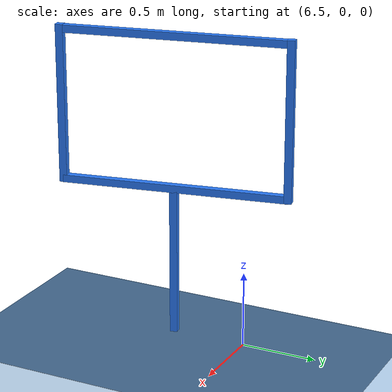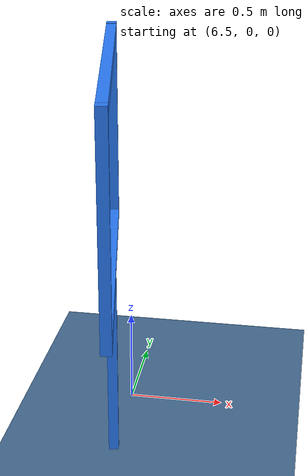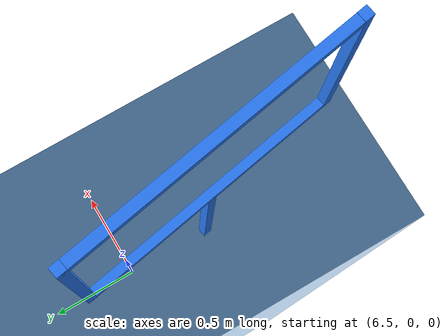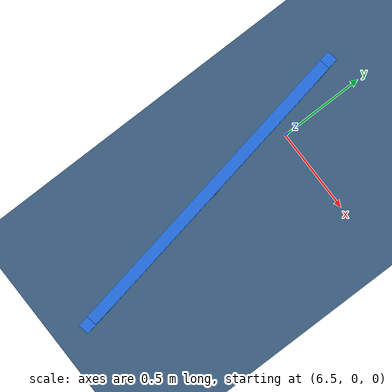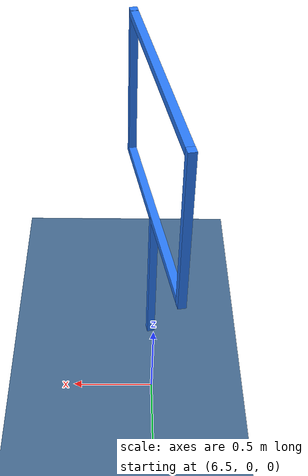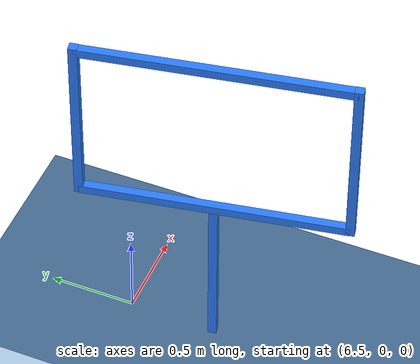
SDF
<sdf version="1.6">
 <world name="water_world">
  <include><pose>6.5 -0.5 0 0 0.0 1.75</pose><uri>model://Big gate</uri></include>
  <plugin filename="libgz-sim-physics-system.so" name="gz::sim::systems::Physics"/>
  <plugin filename="libgz-sim-user-commands-system.so" name="gz::sim::systems::UserCommands"/>
  <plugin filename="libgz-sim-scene-broadcaster-system.so" name="gz::sim::systems::SceneBroadcaster"/>
  <plugin filename="gz-sim-sensors-system" name="gz::sim::systems::Sensors">
   <render_engine>ogre2</render_engine>
  </plugin>
  <plugin filename="gz-sim-imu-system" name="gz::sim::systems::Imu"/>
  <plugin filename="libgz-sim-buoyancy-system.so" name="gz::sim::systems::Buoyancy">
   <uniform_fluid_density>1000</uniform_fluid_density>
   <buoyancy>
    <link_name>mesh::link</link_name>
    <geometry><box><size>0.543 0.510 0.408</size></box></geometry>
   </buoyancy>
  </plugin>
  <physics name="1ms" type="ode">
   <max_step_size>0.001</max_step_size>
   <real_time_factor>1.0</real_time_factor>
   <ode>
    <solver><type>quick</type><iters>50</iters><sor>1.3</sor></solver>
    <constraints>
     <cfm>0.0</cfm>
     <erp>0.2</erp>
     <contact_max_correcting_vel>100.0</contact_max_correcting_vel>
     <contact_surface_layer>0.001</contact_surface_layer>
    </constraints>
   </ode>
  </physics>
  <model name="water_volume">
   <static>true</static>
   <pose>0 0 -5 0 0 0</pose>
   <link name="water_link">
    <collision name="water_collision">
     <geometry><box><size>100 100 10</size></box></geometry>
     <surface>
      <contact>
       <collide_without_contact>1</collide_without_contact>
       <collide_without_contact_bitmask>2</collide_without_contact_bitmask>
      </contact>
     </surface>
    </collision>
    <visual name="water_visual">
     <geometry><box><size>100 100 10</size></box></geometry>
     <material>
      <ambient>0.0 0.5 1.0 0.3</ambient>
      <diffuse>0.0 0.5 1.0 0.3</diffuse>
      <specular>0.1 0.1 0.1 1</specular>
      <emissive>0.0 0.0 0.0 1</emissive>
     </material>
     <transparency>0.7</transparency>
    </visual>
   </link>
  </model>
  <light type="directional" name="sun">
   <pose>0 0 10 0 0 0</pose>
   <diffuse>0.8 0.8 0.8 1</diffuse>
   <specular>0.2 0.2 0.2 1</specular>
   <attenuation>
    <range>1000</range>
    <constant>0.9</constant>
    <linear>0.01</linear>
    <quadratic>0.001</quadratic>
   </attenuation>
   <direction>-0.5 0.1 -0.9</direction>
  </light>
  <model name="ground_plane">
   <static>true</static>
   <link name="link">
    <collision name="collision">
     <geometry><plane><normal>0 0 1</normal><size>100 100</size></plane></geometry>
    </collision>
    <visual name="visual">
     <geometry><plane><normal>0 0 1</normal><size>100 100</size></plane></geometry>
     <material>
      <ambient>0.4 0.4 0.4 1</ambient>
      <diffuse>0.4 0.4 0.4 1</diffuse>
      <specular>0.8 0.8 0.8 1</specular>
     </material>
    </visual>
   </link>
  </model>
 </world>
</sdf>

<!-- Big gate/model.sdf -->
<sdf version="1.6">
  <model name="small_gate">
    <!-- Rod -->
    <link name="rod">
      <pose>0 0 0.5 0 0 0</pose>
      <inertial>
        <mass>1</mass>
        <inertia>
          <ixx>0.166667</ixx>
          <ixy>0</ixy>
          <ixz>0</ixz>
          <iyy>0.166667</iyy>
          <iyz>0</iyz>
          <izz>0.166667</izz>
        </inertia>
        <pose frame="">0 0 0 0 0 0</pose>
      </inertial>
      <self_collide>0</self_collide>
      <kinematic>0</kinematic>
      <gravity>1</gravity>
      <visual name="visual">
        <geometry>
          <box>
            <size>0.05 0.05 1</size>
          </box>
        </geometry>
        <material>
          <shader type="vertex">
            <normal_map>__default__</normal_map>
          </shader>
          <ambient>0.164 0.484 0.978 1</ambient>
          <diffuse>0.164 0.484 0.978 1</diffuse>
          <specular>0.01 0.01 0.01 1</specular>
          <emissive>0 0 0 1</emissive>
        </material>
        <pose frame="">0 0 0 0 0 0</pose>
        <transparency>0</transparency>
        <cast_shadows>1</cast_shadows>
      </visual>
      <collision name="collision">
        <laser_retro>0</laser_retro>
        <max_contacts>10</max_contacts>
        <pose frame="">0 0 0 0 0 0</pose>
        <geometry>
          <box>
            <size>0.05 0.05 1</size>
          </box>
        </geometry>
        <surface>
          <friction>
            <ode>
              <mu>1</mu>
              <mu2>1</mu2>
              <fdir1>0 0 0</fdir1>
              <slip1>0</slip1>
              <slip2>0</slip2>
            </ode>
            <torsional>
              <coefficient>1</coefficient>
              <patch_radius>0</patch_radius>
              <surface_radius>0</surface_radius>
              <use_patch_radius>1</use_patch_radius>
              <ode>
                <slip>0</slip>
              </ode>
            </torsional>
          </friction>
          <bounce>
            <restitution_coefficient>0</restitution_coefficient>
            <threshold>1e+06</threshold>
          </bounce>
          <contact>
            <collide_without_contact>0</collide_without_contact>
            <collide_without_contact_bitmask>1</collide_without_contact_bitmask>
            <collide_bitmask>1</collide_bitmask>
            <ode>
              <soft_cfm>0</soft_cfm>
              <soft_erp>0.2</soft_erp>
              <kp>1e+13</kp>
              <kd>1</kd>
              <max_vel>0.01</max_vel>
              <min_depth>0</min_depth>
            </ode>
            <bullet>
              <split_impulse>1</split_impulse>
              <split_impulse_penetration_threshold>-0.01</split_impulse_penetration_threshold>
              <soft_cfm>0</soft_cfm>
              <soft_erp>0.2</soft_erp>
              <kp>1e+13</kp>
              <kd>1</kd>
            </bullet>
          </contact>
        </surface>
      </collision>
    </link>
    <!-- Top edge -->
    <link name="top_edge">
      <pose frame="">0 0 2 0 0 0</pose>
      <inertial>
        <mass>1</mass>
        <inertia>
          <ixx>0.166667</ixx>
          <ixy>0</ixy>
          <ixz>0</ixz>
          <iyy>0.166667</iyy>
          <iyz>0</iyz>
          <izz>0.166667</izz>
        </inertia>
        <pose frame="">0 0 0 0 0 0</pose>
      </inertial>
      <self_collide>0</self_collide>
      <kinematic>0</kinematic>
      <gravity>1</gravity>
      <visual name="visual">
        <geometry>
          <box>
            <size>1.5 0.05 0.05</size>
          </box>
        </geometry>
        <material>
          <shader type="vertex">
            <normal_map>__default__</normal_map>
          </shader>
          <ambient>0.164 0.484 0.978 1</ambient>
          <diffuse>0.164 0.484 0.978 1</diffuse>
          <specular>0.01 0.01 0.01 1</specular>
          <emissive>0 0 0 1</emissive>
        </material>
        <pose frame="">0 0 0 0 0 0</pose>
        <transparency>0</transparency>
        <cast_shadows>1</cast_shadows>
      </visual>
      <collision name="collision">
        <laser_retro>0</laser_retro>
        <max_contacts>10</max_contacts>
        <pose frame="">0 0 0 0 0 0</pose>
        <geometry>
          <box>
            <size>1.5 0.05 0.05</size>
          </box>
        </geometry>
        <surface>
          <friction>
            <ode>
              <mu>1</mu>
              <mu2>1</mu2>
              <fdir1>0 0 0</fdir1>
              <slip1>0</slip1>
              <slip2>0</slip2>
            </ode>
            <torsional>
              <coefficient>1</coefficient>
              <patch_radius>0</patch_radius>
              <surface_radius>0</surface_radius>
              <use_patch_radius>1</use_patch_radius>
              <ode>
                <slip>0</slip>
              </ode>
            </torsional>
          </friction>
          <bounce>
            <restitution_coefficient>0</restitution_coefficient>
            <threshold>1e+06</threshold>
          </bounce>
          <contact>
            <collide_without_contact>0</collide_without_contact>
            <collide_without_contact_bitmask>1</collide_without_contact_bitmask>
            <collide_bitmask>1</collide_bitmask>
            <ode>
              <soft_cfm>0</soft_cfm>
              <soft_erp>0.2</soft_erp>
              <kp>1e+13</kp>
              <kd>1</kd>
              <max_vel>0.01</max_vel>
              <min_depth>0</min_depth>
            </ode>
            <bullet>
              <split_impulse>1</split_impulse>
              <split_impulse_penetration_threshold>-0.01</split_impulse_penetration_threshold>
              <soft_cfm>0</soft_cfm>
              <soft_erp>0.2</soft_erp>
              <kp>1e+13</kp>
              <kd>1</kd>
            </bullet>
          </contact>
        </surface>
      </collision>
    </link>
    <!-- Bottom edge -->
    <link name="bottom_edge">
      <pose frame="">0 0 1 0 0 0</pose>
      <inertial>
        <mass>1</mass>
        <inertia>
          <ixx>0.166667</ixx>
          <ixy>0</ixy>
          <ixz>0</ixz>
          <iyy>0.166667</iyy>
          <iyz>0</iyz>
          <izz>0.166667</izz>
        </inertia>
        <pose frame="">0 0 0 0 0 0</pose>
      </inertial>
      <self_collide>0</self_collide>
      <kinematic>0</kinematic>
      <gravity>1</gravity>
      <visual name="visual">
        <geometry>
          <box>
            <size>1.5 0.05 0.05</size>
          </box>
        </geometry>
        <material>
          <shader type="vertex">
            <normal_map>__default__</normal_map>
          </shader>
          <ambient>0.164 0.484 0.978 1</ambient>
          <diffuse>0.164 0.484 0.978 1</diffuse>
          <specular>0.01 0.01 0.01 1</specular>
          <emissive>0 0 0 1</emissive>
        </material>
        <pose frame="">0 0 0 0 0 0</pose>
        <transparency>0</transparency>
        <cast_shadows>1</cast_shadows>
      </visual>
      <collision name="collision">
        <laser_retro>0</laser_retro>
        <max_contacts>10</max_contacts>
        <pose frame="">0 0 0 0 0 0</pose>
        <geometry>
          <box>
            <size>1.5 0.05 0.05</size>
          </box>
        </geometry>
        <surface>
          <friction>
            <ode>
              <mu>1</mu>
              <mu2>1</mu2>
              <fdir1>0 0 0</fdir1>
              <slip1>0</slip1>
              <slip2>0</slip2>
            </ode>
            <torsional>
              <coefficient>1</coefficient>
              <patch_radius>0</patch_radius>
              <surface_radius>0</surface_radius>
              <use_patch_radius>1</use_patch_radius>
              <ode>
                <slip>0</slip>
              </ode>
            </torsional>
          </friction>
          <bounce>
            <restitution_coefficient>0</restitution_coefficient>
            <threshold>1e+06</threshold>
          </bounce>
          <contact>
            <collide_without_contact>0</collide_without_contact>
            <collide_without_contact_bitmask>1</collide_without_contact_bitmask>
            <collide_bitmask>1</collide_bitmask>
            <ode>
              <soft_cfm>0</soft_cfm>
              <soft_erp>0.2</soft_erp>
              <kp>1e+13</kp>
              <kd>1</kd>
              <max_vel>0.01</max_vel>
              <min_depth>0</min_depth>
            </ode>
            <bullet>
              <split_impulse>1</split_impulse>
              <split_impulse_penetration_threshold>-0.01</split_impulse_penetration_threshold>
              <soft_cfm>0</soft_cfm>
              <soft_erp>0.2</soft_erp>
              <kp>1e+13</kp>
              <kd>1</kd>
            </bullet>
          </contact>
        </surface>
      </collision>
    </link>
    <!-- left edge -->
    <link name="left_edge">
      <pose frame="">-0.75 0 1.502 0 0 0</pose>
      <inertial>
        <mass>1</mass>
        <inertia>
          <ixx>0.166667</ixx>
          <ixy>0</ixy>
          <ixz>0</ixz>
          <iyy>0.166667</iyy>
          <iyz>0</iyz>
          <izz>0.166667</izz>
        </inertia>
        <pose frame="">0 0 0 0 0 0</pose>
      </inertial>
      <self_collide>0</self_collide>
      <kinematic>0</kinematic>
      <gravity>1</gravity>
      <visual name="visual">
        <geometry>
          <box>
            <size>0.05 0.05 1.05</size>
          </box>
        </geometry>
        <material>
          <shader type="vertex">
            <normal_map>__default__</normal_map>
          </shader>
          <ambient>0.164 0.484 0.978 1</ambient>
          <diffuse>0.164 0.484 0.978 1</diffuse>
          <specular>0.01 0.01 0.01 1</specular>
          <emissive>0 0 0 1</emissive>
        </material>
        <pose frame="">0 0 0 0 0 0</pose>
        <transparency>0</transparency>
        <cast_shadows>1</cast_shadows>
      </visual>
      <collision name="collision">
        <laser_retro>0</laser_retro>
        <max_contacts>10</max_contacts>
        <pose frame="">0 0 0 0 0 0</pose>
        <geometry>
          <box>
            <size>0.05 0.05 1.05</size>
          </box>
        </geometry>
        <surface>
          <friction>
            <ode>
              <mu>1</mu>
              <mu2>1</mu2>
              <fdir1>0 0 0</fdir1>
              <slip1>0</slip1>
              <slip2>0</slip2>
            </ode>
            <torsional>
              <coefficient>1</coefficient>
              <patch_radius>0</patch_radius>
              <surface_radius>0</surface_radius>
              <use_patch_radius>1</use_patch_radius>
              <ode>
                <slip>0</slip>
              </ode>
            </torsional>
          </friction>
          <bounce>
            <restitution_coefficient>0</restitution_coefficient>
            <threshold>1e+06</threshold>
          </bounce>
          <contact>
            <collide_without_contact>0</collide_without_contact>
            <collide_without_contact_bitmask>1</collide_without_contact_bitmask>
            <collide_bitmask>1</collide_bitmask>
            <ode>
              <soft_cfm>0</soft_cfm>
              <soft_erp>0.2</soft_erp>
              <kp>1e+13</kp>
              <kd>1</kd>
              <max_vel>0.01</max_vel>
              <min_depth>0</min_depth>
            </ode>
            <bullet>
              <split_impulse>1</split_impulse>
              <split_impulse_penetration_threshold>-0.01</split_impulse_penetration_threshold>
              <soft_cfm>0</soft_cfm>
              <soft_erp>0.2</soft_erp>
              <kp>1e+13</kp>
              <kd>1</kd>
            </bullet>
          </contact>
        </surface>
      </collision>
    </link>
    <!-- Right edge -->
    <link name="right_edge">
      <pose frame="">0.75 0 1.502 0 0 0</pose>
      <inertial>
        <mass>1</mass>
        <inertia>
          <ixx>0.166667</ixx>
          <ixy>0</ixy>
          <ixz>0</ixz>
          <iyy>0.166667</iyy>
          <iyz>0</iyz>
          <izz>0.166667</izz>
        </inertia>
        <pose frame="">0 0 0 0 0 0</pose>
      </inertial>
      <self_collide>0</self_collide>
      <kinematic>0</kinematic>
      <gravity>1</gravity>
      <visual name="visual">
        <geometry>
          <box>
            <size>0.05 0.05 1.05</size>
          </box>
        </geometry>
        <material>
          <shader type="vertex">
            <normal_map>__default__</normal_map>
          </shader>
          <ambient>0.164 0.484 0.978 1</ambient>
          <diffuse>0.164 0.484 0.978 1</diffuse>
          <specular>0.01 0.01 0.01 1</specular>
          <emissive>0 0 0 1</emissive>
        </material>
        <pose frame="">0 0 0 0 0 0</pose>
        <transparency>0</transparency>
        <cast_shadows>1</cast_shadows>
      </visual>
      <collision name="collision">
        <laser_retro>0</laser_retro>
        <max_contacts>10</max_contacts>
        <pose frame="">0 0 0 0 0 0</pose>
        <geometry>
          <box>
            <size>0.05 0.05 1.05</size>
          </box>
        </geometry>
        <surface>
          <friction>
            <ode>
              <mu>1</mu>
              <mu2>1</mu2>
              <fdir1>0 0 0</fdir1>
              <slip1>0</slip1>
              <slip2>0</slip2>
            </ode>
            <torsional>
              <coefficient>1</coefficient>
              <patch_radius>0</patch_radius>
              <surface_radius>0</surface_radius>
              <use_patch_radius>1</use_patch_radius>
              <ode>
                <slip>0</slip>
              </ode>
            </torsional>
          </friction>
          <bounce>
            <restitution_coefficient>0</restitution_coefficient>
            <threshold>1e+06</threshold>
          </bounce>
          <contact>
            <collide_without_contact>0</collide_without_contact>
            <collide_without_contact_bitmask>1</collide_without_contact_bitmask>
            <collide_bitmask>1</collide_bitmask>
            <ode>
              <soft_cfm>0</soft_cfm>
              <soft_erp>0.2</soft_erp>
              <kp>1e+13</kp>
              <kd>1</kd>
              <max_vel>0.01</max_vel>
              <min_depth>0</min_depth>
            </ode>
            <bullet>
              <split_impulse>1</split_impulse>
              <split_impulse_penetration_threshold>-0.01</split_impulse_penetration_threshold>
              <soft_cfm>0</soft_cfm>
              <soft_erp>0.2</soft_erp>
              <kp>1e+13</kp>
              <kd>1</kd>
            </bullet>
          </contact>
        </surface>
      </collision>
    </link>
    <static>1</static>
    <allow_auto_disable>1</allow_auto_disable>
  </model>
</sdf>
